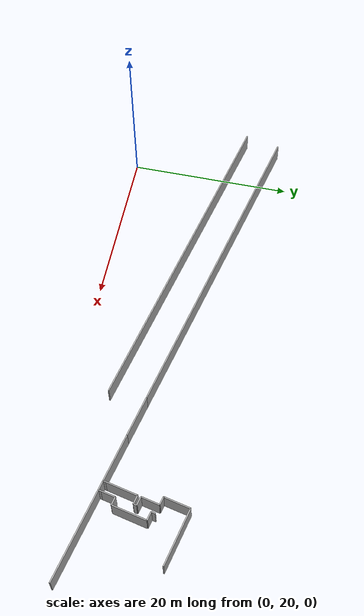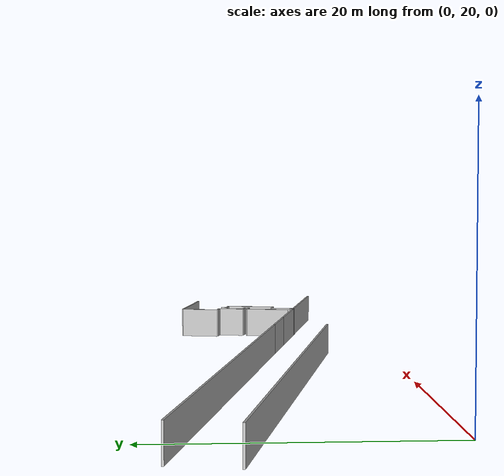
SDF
<?xml version="1.0" ?>
<sdf version="1.6">
  <model name="sps_1905">
    <pose frame="">0 0 0 0 -0 0</pose>
    <static>1</static>
    <self_collide>0</self_collide>
    <allow_auto_disable>0</allow_auto_disable>
    <link name="Wall119">
      <kinematic>0</kinematic>
      <gravity>1</gravity>
      <self_collide>0</self_collide>
      <collision name="collision">
        <geometry>
          <box>
            <size>5.13421 0.15 2.5</size>
          </box>
        </geometry>
        <pose frame="">0 0 0 0 -0 0</pose>
      </collision>
      <visual name="visual">
        <geometry>
          <box>
            <size>5.13421 0.15 2.5</size>
          </box>
        </geometry>
        <pose frame="">0 0 0 0 -0 0</pose>
        <cast_shadows>1</cast_shadows>
        <transparency>0.0</transparency>
      </visual>
      <pose frame="">36.9778 28.8386 1.25 0 -0 2.92731</pose>
    </link>
    <link name="Wall120">
      <kinematic>0</kinematic>
      <gravity>1</gravity>
      <self_collide>0</self_collide>
      <collision name="collision">
        <geometry>
          <box>
            <size>40.7111 0.15 2.5</size>
          </box>
        </geometry>
        <pose frame="">0 0 0 0 -0 0</pose>
      </collision>
      <visual name="visual">
        <geometry>
          <box>
            <size>40.7111 0.15 2.5</size>
          </box>
        </geometry>
        <pose frame="">0 0 0 0 -0 0</pose>
        <cast_shadows>1</cast_shadows>
        <transparency>0.0</transparency>
      </visual>
      <pose frame="">14.5795 33.7131 1.25 0 -0 2.92731</pose>
    </link>
    <link name="Wall364">
      <kinematic>0</kinematic>
      <gravity>1</gravity>
      <self_collide>0</self_collide>
      <collision name="collision">
        <geometry>
          <box>
            <size>41.6686 0.15 2.5</size>
          </box>
        </geometry>
        <pose frame="">0 0 0 0 -0 0</pose>
      </collision>
      <visual name="visual">
        <geometry>
          <box>
            <size>41.6686 0.15 2.5</size>
          </box>
        </geometry>
        <pose frame="">0 0 0 0 -0 0</pose>
        <cast_shadows>1</cast_shadows>
        <transparency>0.0</transparency>
      </visual>
      <pose frame="">14.1117 29.312 1.25 0 -0 2.9273</pose>
    </link>
    <link name="Wall539">
      <kinematic>0</kinematic>
      <gravity>1</gravity>
      <self_collide>0</self_collide>
      <collision name="collision">
        <geometry>
          <box>
            <size>18.5 0.15 2.5</size>
          </box>
        </geometry>
        <pose frame="">0 0 0 0 -0 0</pose>
      </collision>
      <visual name="visual">
        <geometry>
          <box>
            <size>18.5 0.15 2.5</size>
          </box>
        </geometry>
        <pose frame="">0 0 0 0 -0 0</pose>
        <cast_shadows>1</cast_shadows>
        <transparency>0.0</transparency>
      </visual>
      <pose frame="">48.5246 26.3257 1.25 0 0 -0.214283</pose>
    </link>
    <link name="Wall2335">
      <kinematic>0</kinematic>
      <gravity>1</gravity>
      <self_collide>0</self_collide>
      <collision name="collision">
        <geometry>
          <box>
            <size>0.499995 0.15 2.5</size>
          </box>
        </geometry>
        <pose frame="">0 0 0 0 -0 0</pose>
      </collision>
      <visual name="visual">
        <geometry>
          <box>
            <size>0.499995 0.15 2.5</size>
          </box>
        </geometry>
        <pose frame="">0 0 0 0 -0 0</pose>
        <cast_shadows>1</cast_shadows>
        <transparency>0.0</transparency>
      </visual>
      <pose frame="">47.8079 33.2656 1.25 0 0 -1.78483</pose>
    </link>
    <link name="Wall2336">
      <kinematic>0</kinematic>
      <gravity>1</gravity>
      <self_collide>0</self_collide>
      <collision name="collision">
        <geometry>
          <box>
            <size>1.07993 0.15 2.5</size>
          </box>
        </geometry>
        <pose frame="">0 0 0 0 -0 0</pose>
      </collision>
      <visual name="visual">
        <geometry>
          <box>
            <size>1.07993 0.15 2.5</size>
          </box>
        </geometry>
        <pose frame="">0 0 0 0 -0 0</pose>
        <cast_shadows>1</cast_shadows>
        <transparency>0.0</transparency>
      </visual>
      <pose frame="">48.2825 32.9065 1.25 0 0 -0.214255</pose>
    </link>
    <link name="Wall2337">
      <kinematic>0</kinematic>
      <gravity>1</gravity>
      <self_collide>0</self_collide>
      <collision name="collision">
        <geometry>
          <box>
            <size>4.30218 0.15 2.5</size>
          </box>
        </geometry>
        <pose frame="">0 0 0 0 -0 0</pose>
      </collision>
      <visual name="visual">
        <geometry>
          <box>
            <size>4.30218 0.15 2.5</size>
          </box>
        </geometry>
        <pose frame="">0 0 0 0 -0 0</pose>
        <cast_shadows>1</cast_shadows>
        <transparency>0.0</transparency>
      </visual>
      <pose frame="">48.3527 30.6898 1.25 0 0 -1.78507</pose>
    </link>
    <link name="Wall2338">
      <kinematic>0</kinematic>
      <gravity>1</gravity>
      <self_collide>0</self_collide>
      <collision name="collision">
        <geometry>
          <box>
            <size>0.99991 0.15 2.5</size>
          </box>
        </geometry>
        <pose frame="">0 0 0 0 -0 0</pose>
      </collision>
      <visual name="visual">
        <geometry>
          <box>
            <size>0.99991 0.15 2.5</size>
          </box>
        </geometry>
        <pose frame="">0 0 0 0 -0 0</pose>
        <cast_shadows>1</cast_shadows>
        <transparency>0.0</transparency>
      </visual>
      <pose frame="">47.4068 28.6942 1.25 0 -0 2.92735</pose>
    </link>
    <link name="Wall2339">
      <kinematic>0</kinematic>
      <gravity>1</gravity>
      <self_collide>0</self_collide>
      <collision name="collision">
        <geometry>
          <box>
            <size>1.72873 0.15 2.5</size>
          </box>
        </geometry>
        <pose frame="">0 0 0 0 -0 0</pose>
      </collision>
      <visual name="visual">
        <geometry>
          <box>
            <size>1.72873 0.15 2.5</size>
          </box>
        </geometry>
        <pose frame="">0 0 0 0 -0 0</pose>
        <cast_shadows>1</cast_shadows>
        <transparency>0.0</transparency>
      </visual>
      <pose frame="">46.7345 27.9559 1.25 0 0 -1.78505</pose>
    </link>
    <link name="Wall2340">
      <kinematic>0</kinematic>
      <gravity>1</gravity>
      <self_collide>0</self_collide>
      <collision name="collision">
        <geometry>
          <box>
            <size>0.347934 0.15 2.5</size>
          </box>
        </geometry>
        <pose frame="">0 0 0 0 -0 0</pose>
      </collision>
      <visual name="visual">
        <geometry>
          <box>
            <size>0.347934 0.15 2.5</size>
          </box>
        </geometry>
        <pose frame="">0 0 0 0 -0 0</pose>
        <cast_shadows>1</cast_shadows>
        <transparency>0.0</transparency>
      </visual>
      <pose frame="">46.5137 26.9413 1.25 0 0 -1.78522</pose>
    </link>
    <link name="Wall2341">
      <kinematic>0</kinematic>
      <gravity>1</gravity>
      <self_collide>0</self_collide>
      <collision name="collision">
        <geometry>
          <box>
            <size>1.15995 0.15 2.5</size>
          </box>
        </geometry>
        <pose frame="">0 0 0 0 -0 0</pose>
      </collision>
      <visual name="visual">
        <geometry>
          <box>
            <size>1.15995 0.15 2.5</size>
          </box>
        </geometry>
        <pose frame="">0 0 0 0 -0 0</pose>
        <cast_shadows>1</cast_shadows>
        <transparency>0.0</transparency>
      </visual>
      <pose frame="">45.91 26.8948 1.25 0 -0 2.92706</pose>
    </link>
    <link name="Wall2342">
      <kinematic>0</kinematic>
      <gravity>1</gravity>
      <self_collide>0</self_collide>
      <collision name="collision">
        <geometry>
          <box>
            <size>0.347981 0.15 2.5</size>
          </box>
        </geometry>
        <pose frame="">0 0 0 0 -0 0</pose>
      </collision>
      <visual name="visual">
        <geometry>
          <box>
            <size>0.347981 0.15 2.5</size>
          </box>
        </geometry>
        <pose frame="">0 0 0 0 -0 0</pose>
        <cast_shadows>1</cast_shadows>
        <transparency>0.0</transparency>
      </visual>
      <pose frame="">45.3803 27.1883 1.25 0 -0 1.35658</pose>
    </link>
    <link name="Wall2343">
      <kinematic>0</kinematic>
      <gravity>1</gravity>
      <self_collide>0</self_collide>
      <collision name="collision">
        <geometry>
          <box>
            <size>3.87829 0.15 2.5</size>
          </box>
        </geometry>
        <pose frame="">0 0 0 0 -0 0</pose>
      </collision>
      <visual name="visual">
        <geometry>
          <box>
            <size>3.87829 0.15 2.5</size>
          </box>
        </geometry>
        <pose frame="">0 0 0 0 -0 0</pose>
        <cast_shadows>1</cast_shadows>
        <transparency>0.0</transparency>
      </visual>
      <pose frame="">45.8296 29.2531 1.25 0 -0 1.35655</pose>
    </link>
    <link name="Wall2344">
      <kinematic>0</kinematic>
      <gravity>1</gravity>
      <self_collide>0</self_collide>
      <collision name="collision">
        <geometry>
          <box>
            <size>1.07989 0.15 2.5</size>
          </box>
        </geometry>
        <pose frame="">0 0 0 0 -0 0</pose>
      </collision>
      <visual name="visual">
        <geometry>
          <box>
            <size>1.07989 0.15 2.5</size>
          </box>
        </geometry>
        <pose frame="">0 0 0 0 -0 0</pose>
        <cast_shadows>1</cast_shadows>
        <transparency>0.0</transparency>
      </visual>
      <pose frame="">46.7695 31.0332 1.25 0 0 -0.214089</pose>
    </link>
    <link name="Wall2345">
      <kinematic>0</kinematic>
      <gravity>1</gravity>
      <self_collide>0</self_collide>
      <collision name="collision">
        <geometry>
          <box>
            <size>0.399937 0.15 2.5</size>
          </box>
        </geometry>
        <pose frame="">0 0 0 0 -0 0</pose>
      </collision>
      <visual name="visual">
        <geometry>
          <box>
            <size>0.399937 0.15 2.5</size>
          </box>
        </geometry>
        <pose frame="">0 0 0 0 -0 0</pose>
        <cast_shadows>1</cast_shadows>
        <transparency>0.0</transparency>
      </visual>
      <pose frame="">47.3396 31.1139 1.25 0 -0 1.35673</pose>
    </link>
    <link name="Wall2346">
      <kinematic>0</kinematic>
      <gravity>1</gravity>
      <self_collide>0</self_collide>
      <collision name="collision">
        <geometry>
          <box>
            <size>1.07987 0.15 2.5</size>
          </box>
        </geometry>
        <pose frame="">0 0 0 0 -0 0</pose>
      </collision>
      <visual name="visual">
        <geometry>
          <box>
            <size>1.07987 0.15 2.5</size>
          </box>
        </geometry>
        <pose frame="">0 0 0 0 -0 0</pose>
        <cast_shadows>1</cast_shadows>
        <transparency>0.0</transparency>
      </visual>
      <pose frame="">46.8545 31.4241 1.25 0 -0 2.92733</pose>
    </link>
    <link name="Wall2347">
      <kinematic>0</kinematic>
      <gravity>1</gravity>
      <self_collide>0</self_collide>
      <collision name="collision">
        <geometry>
          <box>
            <size>2.25233 0.15 2.5</size>
          </box>
        </geometry>
        <pose frame="">0 0 0 0 -0 0</pose>
      </collision>
      <visual name="visual">
        <geometry>
          <box>
            <size>2.25233 0.15 2.5</size>
          </box>
        </geometry>
        <pose frame="">0 0 0 0 -0 0</pose>
        <cast_shadows>1</cast_shadows>
        <transparency>0.0</transparency>
      </visual>
      <pose frame="">46.5664 32.6393 1.25 0 -0 1.35649</pose>
    </link>
    <link name="Wall2348">
      <kinematic>0</kinematic>
      <gravity>1</gravity>
      <self_collide>0</self_collide>
      <collision name="collision">
        <geometry>
          <box>
            <size>1.00027 0.15 2.5</size>
          </box>
        </geometry>
        <pose frame="">0 0 0 0 -0 0</pose>
      </collision>
      <visual name="visual">
        <geometry>
          <box>
            <size>1.00027 0.15 2.5</size>
          </box>
        </geometry>
        <pose frame="">0 0 0 0 -0 0</pose>
        <cast_shadows>1</cast_shadows>
        <transparency>0.0</transparency>
      </visual>
      <pose frame="">46.3172 33.846 1.25 0 -0 2.92743</pose>
    </link>
    <link name="Wall2349">
      <kinematic>0</kinematic>
      <gravity>1</gravity>
      <self_collide>0</self_collide>
      <collision name="collision">
        <geometry>
          <box>
            <size>3.25956 0.15 2.5</size>
          </box>
        </geometry>
        <pose frame="">0 0 0 0 -0 0</pose>
      </collision>
      <visual name="visual">
        <geometry>
          <box>
            <size>3.25956 0.15 2.5</size>
          </box>
        </geometry>
        <pose frame="">0 0 0 0 -0 0</pose>
        <cast_shadows>1</cast_shadows>
        <transparency>0.0</transparency>
      </visual>
      <pose frame="">46.175 35.5448 1.25 0 -0 1.3565</pose>
    </link>
    <link name="Wall2350">
      <kinematic>0</kinematic>
      <gravity>1</gravity>
      <self_collide>0</self_collide>
      <collision name="collision">
        <geometry>
          <box>
            <size>7.06024 0.15 2.5</size>
          </box>
        </geometry>
        <pose frame="">0 0 0 0 -0 0</pose>
      </collision>
      <visual name="visual">
        <geometry>
          <box>
            <size>7.06024 0.15 2.5</size>
          </box>
        </geometry>
        <pose frame="">0 0 0 0 -0 0</pose>
        <cast_shadows>1</cast_shadows>
        <transparency>0.0</transparency>
      </visual>
      <pose frame="">49.971 36.3867 1.25 0 0 -0.214257</pose>
    </link>
  </model>
</sdf>
